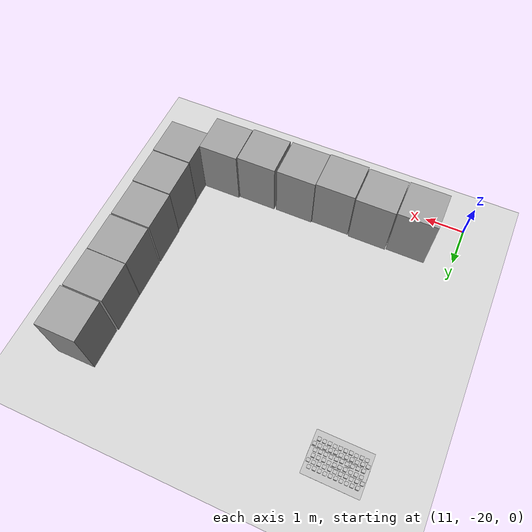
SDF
<sdf version="1.6">
 <world name="default">
  <model name="ground_plane">
   <static>1</static>
   <link name="link">
    <collision name="collision">
     <geometry><plane><normal>0 0 1</normal><size>100 100</size></plane></geometry>
     <surface><friction><ode><mu>100</mu><mu2>50</mu2></ode></friction></surface>
    </collision>
    <visual name="visual">
     <cast_shadows>0</cast_shadows>
     <geometry><plane><normal>0 0 1</normal><size>100 100</size></plane></geometry>
     <material>
      <script><uri>file://media/materials/scripts/gazebo.material</uri><name>Gazebo/Grey</name></script>
     </material>
    </visual>
   </link>
  </model>
  <model name="frc2016_roughterrain_clone_0_clone_clone_3_clone_1_clone_0_clone_clone_2_clone_clone">
   <static>1</static>
   <link name="link">
    <visual name="platform">
     <pose>0 0 0.08269 0 -0 0</pose>
     <geometry><box><size>1.27 0.5969 0.003175</size></box></geometry>
    </visual>
    <collision name="platform">
     <pose>0 0 0.08269 0 -0 0</pose>
     <geometry><box><size>1.27 0.5969 0.003175</size></box></geometry>
    </collision>
    <visual name="row1_block1_sm">
     <pose>0.51435 0.1143 0.09698 0 -0 0</pose>
     <geometry><box><size>0.0762 0.0762 0.0254</size></box></geometry>
    </visual>
    <collision name="row1_block1_sm">
     <pose>0.51435 0.1143 0.09698 0 -0 0</pose>
     <geometry><box><size>0.0762 0.0762 0.0254</size></box></geometry>
    </collision>
    <visual name="row1_block2_lg">
     <pose>0.40005 0.1143 0.12238 0 -0 0</pose>
     <geometry><box><size>0.0762 0.0762 0.0762</size></box></geometry>
    </visual>
    <collision name="row1_block2_lg">
     <pose>0.40005 0.1143 0.12238 0 -0 0</pose>
     <geometry><box><size>0.0762 0.0762 0.0762</size></box></geometry>
    </collision>
    <visual name="row1_block3_md">
     <pose>0.28575 0.1143 0.10968 0 -0 0</pose>
     <geometry><box><size>0.0762 0.0762 0.0508</size></box></geometry>
    </visual>
    <collision name="row1_block3_md">
     <pose>0.28575 0.1143 0.10968 0 -0 0</pose>
     <geometry><box><size>0.0762 0.0762 0.0508</size></box></geometry>
    </collision>
    <visual name="row1_block4_sm">
     <pose>0.17145 0.1143 0.09698 0 -0 0</pose>
     <geometry><box><size>0.0762 0.0762 0.0254</size></box></geometry>
    </visual>
    <collision name="row1_block4_sm">
     <pose>0.17145 0.1143 0.09698 0 -0 0</pose>
     <geometry><box><size>0.0762 0.0762 0.0254</size></box></geometry>
    </collision>
    <visual name="row1_block5_md">
     <pose>0.05715 0.1143 0.10968 0 -0 0</pose>
     <geometry><box><size>0.0762 0.0762 0.0508</size></box></geometry>
    </visual>
    <collision name="row1_block5_md">
     <pose>0.05715 0.1143 0.10968 0 -0 0</pose>
     <geometry><box><size>0.0762 0.0762 0.0508</size></box></geometry>
    </collision>
    <visual name="row1_block6_lg">
     <pose>-0.05715 0.1143 0.12238 0 -0 0</pose>
     <geometry><box><size>0.0762 0.0762 0.0762</size></box></geometry>
    </visual>
    <collision name="row1_block6_lg">
     <pose>-0.05715 0.1143 0.12238 0 -0 0</pose>
     <geometry><box><size>0.0762 0.0762 0.0762</size></box></geometry>
    </collision>
    <visual name="row1_block7_sm">
     <pose>-0.17145 0.1143 0.09698 0 -0 0</pose>
     <geometry><box><size>0.0762 0.0762 0.0254</size></box></geometry>
    </visual>
    <collision name="row1_block7_sm">
     <pose>-0.17145 0.1143 0.09698 0 -0 0</pose>
     <geometry><box><size>0.0762 0.0762 0.0254</size></box></geometry>
    </collision>
    <visual name="row1_block8_sm">
     <pose>-0.28575 0.1143 0.09698 0 -0 0</pose>
     <geometry><box><size>0.0762 0.0762 0.0254</size></box></geometry>
    </visual>
    <collision name="row1_block8_sm">
     <pose>-0.28575 0.1143 0.09698 0 -0 0</pose>
     <geometry><box><size>0.0762 0.0762 0.0254</size></box></geometry>
    </collision>
    <visual name="row1_block9_md">
     <pose>-0.40005 0.1143 0.10968 0 -0 0</pose>
     <geometry><box><size>0.0762 0.0762 0.0508</size></box></geometry>
    </visual>
    <collision name="row1_block9_md">
     <pose>-0.40005 0.1143 0.10968 0 -0 0</pose>
     <geometry><box><size>0.0762 0.0762 0.0508</size></box></geometry>
    </collision>
    <visual name="row1_block10_lg">
     <pose>-0.51435 0.1143 0.12238 0 -0 0</pose>
     <geometry><box><size>0.0762 0.0762 0.0762</size></box></geometry>
    </visual>
    <collision name="row1_block10_lg">
     <pose>-0.51435 0.1143 0.12238 0 -0 0</pose>
     <geometry><box><size>0.0762 0.0762 0.0762</size></box></geometry>
    </collision>
    <visual name="row2_block1_md">
     <pose>0.5715 0 0.10968 0 -0 0</pose>
     <geometry><box><size>0.0762 0.0762 0.0508</size></box></geometry>
    </visual>
    <collision name="row2_block1_md">
     <pose>0.5715 0 0.10968 0 -0 0</pose>
     <geometry><box><size>0.0762 0.0762 0.0508</size></box></geometry>
    </collision>
    <visual name="row2_block2_sm">
     <pose>0.4572 0 0.09698 0 -0 0</pose>
     <geometry><box><size>0.0762 0.0762 0.0254</size></box></geometry>
    </visual>
    <collision name="row2_block2_sm">
     <pose>0.4572 0 0.09698 0 -0 0</pose>
     <geometry><box><size>0.0762 0.0762 0.0254</size></box></geometry>
    </collision>
    <visual name="row2_block3_lg">
     <pose>0.3429 0 0.12238 0 -0 0</pose>
     <geometry><box><size>0.0762 0.0762 0.0762</size></box></geometry>
    </visual>
    <collision name="row2_block3_lg">
     <pose>0.3429 0 0.12238 0 -0 0</pose>
     <geometry><box><size>0.0762 0.0762 0.0762</size></box></geometry>
    </collision>
    <visual name="row2_block4_md">
     <pose>0.2286 0 0.10968 0 -0 0</pose>
     <geometry><box><size>0.0762 0.0762 0.0508</size></box></geometry>
    </visual>
    <collision name="row2_block4_md">
     <pose>0.2286 0 0.10968 0 -0 0</pose>
     <geometry><box><size>0.0762 0.0762 0.0508</size></box></geometry>
    </collision>
    <visual name="row2_block5_lg">
     <pose>0.1143 0 0.12238 0 -0 0</pose>
     <geometry><box><size>0.0762 0.0762 0.0762</size></box></geometry>
    </visual>
    <collision name="row2_block5_lg">
     <pose>0.1143 0 0.12238 0 -0 0</pose>
     <geometry><box><size>0.0762 0.0762 0.0762</size></box></geometry>
    </collision>
    <visual name="row2_block6_sm">
     <pose>0 0 0.09698 0 -0 0</pose>
     <geometry><box><size>0.0762 0.0762 0.0254</size></box></geometry>
    </visual>
    <collision name="row2_block6_sm">
     <pose>0 0 0.09698 0 -0 0</pose>
     <geometry><box><size>0.0762 0.0762 0.0254</size></box></geometry>
    </collision>
    <visual name="row2_block7_md">
     <pose>-0.1143 0 0.10968 0 -0 0</pose>
     <geometry><box><size>0.0762 0.0762 0.0508</size></box></geometry>
    </visual>
    <collision name="row2_block7_md">
     <pose>-0.1143 0 0.10968 0 -0 0</pose>
     <geometry><box><size>0.0762 0.0762 0.0508</size></box></geometry>
    </collision>
    <visual name="row2_block8_lg">
     <pose>-0.2286 0 0.12238 0 -0 0</pose>
     <geometry><box><size>0.0762 0.0762 0.0762</size></box></geometry>
    </visual>
    <collision name="row2_block8_lg">
     <pose>-0.2286 0 0.12238 0 -0 0</pose>
     <geometry><box><size>0.0762 0.0762 0.0762</size></box></geometry>
    </collision>
    <visual name="row2_block9_sm">
     <pose>-0.3429 0 0.09698 0 -0 0</pose>
     <geometry><box><size>0.0762 0.0762 0.0254</size></box></geometry>
    </visual>
    <collision name="row2_block9_sm">
     <pose>-0.3429 0 0.09698 0 -0 0</pose>
     <geometry><box><size>0.0762 0.0762 0.0254</size></box></geometry>
    </collision>
    <visual name="row2_block10_lg">
     <pose>-0.4572 0 0.12238 0 -0 0</pose>
     <geometry><box><size>0.0762 0.0762 0.0762</size></box></geometry>
    </visual>
    <collision name="row2_block10_lg">
     <pose>-0.4572 0 0.12238 0 -0 0</pose>
     <geometry><box><size>0.0762 0.0762 0.0762</size></box></geometry>
    </collision>
    <visual name="row2_block11_md">
     <pose>-0.5715 0 0.10968 0 -0 0</pose>
     <geometry><box><size>0.0762 0.0762 0.0508</size></box></geometry>
    </visual>
    <collision name="row2_block11_md">
     <pose>-0.5715 0 0.10968 0 -0 0</pose>
     <geometry><box><size>0.0762 0.0762 0.0508</size></box></geometry>
    </collision>
    <visual name="row3_block1_lg">
     <pose>0.51435 -0.1143 0.12238 0 -0 0</pose>
     <geometry><box><size>0.0762 0.0762 0.0762</size></box></geometry>
    </visual>
    <collision name="row3_block1_lg">
     <pose>0.51435 -0.1143 0.12238 0 -0 0</pose>
     <geometry><box><size>0.0762 0.0762 0.0762</size></box></geometry>
    </collision>
    <visual name="row3_block2_md">
     <pose>0.40005 -0.1143 0.10968 0 -0 0</pose>
     <geometry><box><size>0.0762 0.0762 0.0508</size></box></geometry>
    </visual>
    <collision name="row3_block2_md">
     <pose>0.40005 -0.1143 0.10968 0 -0 0</pose>
     <geometry><box><size>0.0762 0.0762 0.0508</size></box></geometry>
    </collision>
    <visual name="row3_block3_lg">
     <pose>0.28575 -0.1143 0.12238 0 -0 0</pose>
     <geometry><box><size>0.0762 0.0762 0.0762</size></box></geometry>
    </visual>
    <collision name="row3_block3_lg">
     <pose>0.28575 -0.1143 0.12238 0 -0 0</pose>
     <geometry><box><size>0.0762 0.0762 0.0762</size></box></geometry>
    </collision>
    <visual name="row3_block4_sm">
     <pose>0.17145 -0.1143 0.09698 0 -0 0</pose>
     <geometry><box><size>0.0762 0.0762 0.0254</size></box></geometry>
    </visual>
    <collision name="row3_block4_sm">
     <pose>0.17145 -0.1143 0.09698 0 -0 0</pose>
     <geometry><box><size>0.0762 0.0762 0.0254</size></box></geometry>
    </collision>
    <visual name="row3_block5_md">
     <pose>0.05715 -0.1143 0.10968 0 -0 0</pose>
     <geometry><box><size>0.0762 0.0762 0.0508</size></box></geometry>
    </visual>
    <collision name="row3_block5_md">
     <pose>0.05715 -0.1143 0.10968 0 -0 0</pose>
     <geometry><box><size>0.0762 0.0762 0.0508</size></box></geometry>
    </collision>
    <visual name="row3_block6_md">
     <pose>-0.05715 -0.1143 0.10968 0 -0 0</pose>
     <geometry><box><size>0.0762 0.0762 0.0508</size></box></geometry>
    </visual>
    <collision name="row3_block6_md">
     <pose>-0.05715 -0.1143 0.10968 0 -0 0</pose>
     <geometry><box><size>0.0762 0.0762 0.0508</size></box></geometry>
    </collision>
    <visual name="row3_block7_lg">
     <pose>-0.17145 -0.1143 0.12238 0 -0 0</pose>
     <geometry><box><size>0.0762 0.0762 0.0762</size></box></geometry>
    </visual>
    <collision name="row3_block7_lg">
     <pose>-0.17145 -0.1143 0.12238 0 -0 0</pose>
     <geometry><box><size>0.0762 0.0762 0.0762</size></box></geometry>
    </collision>
    <visual name="row3_block8_sm">
     <pose>-0.28575 -0.1143 0.09698 0 -0 0</pose>
     <geometry><box><size>0.0762 0.0762 0.0254</size></box></geometry>
    </visual>
    <collision name="row3_block8_sm">
     <pose>-0.28575 -0.1143 0.09698 0 -0 0</pose>
     <geometry><box><size>0.0762 0.0762 0.0254</size></box></geometry>
    </collision>
    <visual name="row3_block9_md">
     <pose>-0.40005 -0.1143 0.10968 0 -0 0</pose>
     <geometry><box><size>0.0762 0.0762 0.0508</size></box></geometry>
    </visual>
    <collision name="row3_block9_md">
     <pose>-0.40005 -0.1143 0.10968 0 -0 0</pose>
     <geometry><box><size>0.0762 0.0762 0.0508</size></box></geometry>
    </collision>
    <visual name="row3_block10_sm">
     <pose>-0.51435 -0.1143 0.09698 0 -0 0</pose>
     <geometry><box><size>0.0762 0.0762 0.0254</size></box></geometry>
    </visual>
    <collision name="row3_block10_sm">
     <pose>-0.51435 -0.1143 0.09698 0 -0 0</pose>
     <geometry><box><size>0.0762 0.0762 0.0254</size></box></geometry>
    </collision>
   </link>
   <pose>11.9151 -12.8537 0.826533 0 -0 0</pose>
  </model>
  <model name="frc2016_roughterrain_clone_0_clone_clone_3_clone_1_clone_0_clone_clone_2_clone_clone_0">
   <static>1</static>
   <link name="link">
    <visual name="platform">
     <pose>0 0 0.08269 0 -0 0</pose>
     <geometry><box><size>1.27 0.5969 0.003175</size></box></geometry>
    </visual>
    <collision name="platform">
     <pose>0 0 0.08269 0 -0 0</pose>
     <geometry><box><size>1.27 0.5969 0.003175</size></box></geometry>
    </collision>
    <visual name="row1_block1_sm">
     <pose>0.51435 0.1143 0.09698 0 -0 0</pose>
     <geometry><box><size>0.0762 0.0762 0.0254</size></box></geometry>
    </visual>
    <collision name="row1_block1_sm">
     <pose>0.51435 0.1143 0.09698 0 -0 0</pose>
     <geometry><box><size>0.0762 0.0762 0.0254</size></box></geometry>
    </collision>
    <visual name="row1_block2_lg">
     <pose>0.40005 0.1143 0.12238 0 -0 0</pose>
     <geometry><box><size>0.0762 0.0762 0.0762</size></box></geometry>
    </visual>
    <collision name="row1_block2_lg">
     <pose>0.40005 0.1143 0.12238 0 -0 0</pose>
     <geometry><box><size>0.0762 0.0762 0.0762</size></box></geometry>
    </collision>
    <visual name="row1_block3_md">
     <pose>0.28575 0.1143 0.10968 0 -0 0</pose>
     <geometry><box><size>0.0762 0.0762 0.0508</size></box></geometry>
    </visual>
    <collision name="row1_block3_md">
     <pose>0.28575 0.1143 0.10968 0 -0 0</pose>
     <geometry><box><size>0.0762 0.0762 0.0508</size></box></geometry>
    </collision>
    <visual name="row1_block4_sm">
     <pose>0.17145 0.1143 0.09698 0 -0 0</pose>
     <geometry><box><size>0.0762 0.0762 0.0254</size></box></geometry>
    </visual>
    <collision name="row1_block4_sm">
     <pose>0.17145 0.1143 0.09698 0 -0 0</pose>
     <geometry><box><size>0.0762 0.0762 0.0254</size></box></geometry>
    </collision>
    <visual name="row1_block5_md">
     <pose>0.05715 0.1143 0.10968 0 -0 0</pose>
     <geometry><box><size>0.0762 0.0762 0.0508</size></box></geometry>
    </visual>
    <collision name="row1_block5_md">
     <pose>0.05715 0.1143 0.10968 0 -0 0</pose>
     <geometry><box><size>0.0762 0.0762 0.0508</size></box></geometry>
    </collision>
    <visual name="row1_block6_lg">
     <pose>-0.05715 0.1143 0.12238 0 -0 0</pose>
     <geometry><box><size>0.0762 0.0762 0.0762</size></box></geometry>
    </visual>
    <collision name="row1_block6_lg">
     <pose>-0.05715 0.1143 0.12238 0 -0 0</pose>
     <geometry><box><size>0.0762 0.0762 0.0762</size></box></geometry>
    </collision>
    <visual name="row1_block7_sm">
     <pose>-0.17145 0.1143 0.09698 0 -0 0</pose>
     <geometry><box><size>0.0762 0.0762 0.0254</size></box></geometry>
    </visual>
    <collision name="row1_block7_sm">
     <pose>-0.17145 0.1143 0.09698 0 -0 0</pose>
     <geometry><box><size>0.0762 0.0762 0.0254</size></box></geometry>
    </collision>
    <visual name="row1_block8_sm">
     <pose>-0.28575 0.1143 0.09698 0 -0 0</pose>
     <geometry><box><size>0.0762 0.0762 0.0254</size></box></geometry>
    </visual>
    <collision name="row1_block8_sm">
     <pose>-0.28575 0.1143 0.09698 0 -0 0</pose>
     <geometry><box><size>0.0762 0.0762 0.0254</size></box></geometry>
    </collision>
    <visual name="row1_block9_md">
     <pose>-0.40005 0.1143 0.10968 0 -0 0</pose>
     <geometry><box><size>0.0762 0.0762 0.0508</size></box></geometry>
    </visual>
    <collision name="row1_block9_md">
     <pose>-0.40005 0.1143 0.10968 0 -0 0</pose>
     <geometry><box><size>0.0762 0.0762 0.0508</size></box></geometry>
    </collision>
    <visual name="row1_block10_lg">
     <pose>-0.51435 0.1143 0.12238 0 -0 0</pose>
     <geometry><box><size>0.0762 0.0762 0.0762</size></box></geometry>
    </visual>
    <collision name="row1_block10_lg">
     <pose>-0.51435 0.1143 0.12238 0 -0 0</pose>
     <geometry><box><size>0.0762 0.0762 0.0762</size></box></geometry>
    </collision>
    <visual name="row2_block1_md">
     <pose>0.5715 0 0.10968 0 -0 0</pose>
     <geometry><box><size>0.0762 0.0762 0.0508</size></box></geometry>
    </visual>
    <collision name="row2_block1_md">
     <pose>0.5715 0 0.10968 0 -0 0</pose>
     <geometry><box><size>0.0762 0.0762 0.0508</size></box></geometry>
    </collision>
    <visual name="row2_block2_sm">
     <pose>0.4572 0 0.09698 0 -0 0</pose>
     <geometry><box><size>0.0762 0.0762 0.0254</size></box></geometry>
    </visual>
    <collision name="row2_block2_sm">
     <pose>0.4572 0 0.09698 0 -0 0</pose>
     <geometry><box><size>0.0762 0.0762 0.0254</size></box></geometry>
    </collision>
    <visual name="row2_block3_lg">
     <pose>0.3429 0 0.12238 0 -0 0</pose>
     <geometry><box><size>0.0762 0.0762 0.0762</size></box></geometry>
    </visual>
    <collision name="row2_block3_lg">
     <pose>0.3429 0 0.12238 0 -0 0</pose>
     <geometry><box><size>0.0762 0.0762 0.0762</size></box></geometry>
    </collision>
    <visual name="row2_block4_md">
     <pose>0.2286 0 0.10968 0 -0 0</pose>
     <geometry><box><size>0.0762 0.0762 0.0508</size></box></geometry>
    </visual>
    <collision name="row2_block4_md">
     <pose>0.2286 0 0.10968 0 -0 0</pose>
     <geometry><box><size>0.0762 0.0762 0.0508</size></box></geometry>
    </collision>
    <visual name="row2_block5_lg">
     <pose>0.1143 0 0.12238 0 -0 0</pose>
     <geometry><box><size>0.0762 0.0762 0.0762</size></box></geometry>
    </visual>
    <collision name="row2_block5_lg">
     <pose>0.1143 0 0.12238 0 -0 0</pose>
     <geometry><box><size>0.0762 0.0762 0.0762</size></box></geometry>
    </collision>
    <visual name="row2_block6_sm">
     <pose>0 0 0.09698 0 -0 0</pose>
     <geometry><box><size>0.0762 0.0762 0.0254</size></box></geometry>
    </visual>
    <collision name="row2_block6_sm">
     <pose>0 0 0.09698 0 -0 0</pose>
     <geometry><box><size>0.0762 0.0762 0.0254</size></box></geometry>
    </collision>
    <visual name="row2_block7_md">
     <pose>-0.1143 0 0.10968 0 -0 0</pose>
     <geometry><box><size>0.0762 0.0762 0.0508</size></box></geometry>
    </visual>
    <collision name="row2_block7_md">
     <pose>-0.1143 0 0.10968 0 -0 0</pose>
     <geometry><box><size>0.0762 0.0762 0.0508</size></box></geometry>
    </collision>
    <visual name="row2_block8_lg">
     <pose>-0.2286 0 0.12238 0 -0 0</pose>
     <geometry><box><size>0.0762 0.0762 0.0762</size></box></geometry>
    </visual>
    <collision name="row2_block8_lg">
     <pose>-0.2286 0 0.12238 0 -0 0</pose>
     <geometry><box><size>0.0762 0.0762 0.0762</size></box></geometry>
    </collision>
    <visual name="row2_block9_sm">
     <pose>-0.3429 0 0.09698 0 -0 0</pose>
     <geometry><box><size>0.0762 0.0762 0.0254</size></box></geometry>
    </visual>
    <collision name="row2_block9_sm">
     <pose>-0.3429 0 0.09698 0 -0 0</pose>
     <geometry><box><size>0.0762 0.0762 0.0254</size></box></geometry>
    </collision>
    <visual name="row2_block10_lg">
     <pose>-0.4572 0 0.12238 0 -0 0</pose>
     <geometry><box><size>0.0762 0.0762 0.0762</size></box></geometry>
    </visual>
    <collision name="row2_block10_lg">
     <pose>-0.4572 0 0.12238 0 -0 0</pose>
     <geometry><box><size>0.0762 0.0762 0.0762</size></box></geometry>
    </collision>
    <visual name="row2_block11_md">
     <pose>-0.5715 0 0.10968 0 -0 0</pose>
     <geometry><box><size>0.0762 0.0762 0.0508</size></box></geometry>
    </visual>
    <collision name="row2_block11_md">
     <pose>-0.5715 0 0.10968 0 -0 0</pose>
     <geometry><box><size>0.0762 0.0762 0.0508</size></box></geometry>
    </collision>
    <visual name="row3_block1_lg">
     <pose>0.51435 -0.1143 0.12238 0 -0 0</pose>
     <geometry><box><size>0.0762 0.0762 0.0762</size></box></geometry>
    </visual>
    <collision name="row3_block1_lg">
     <pose>0.51435 -0.1143 0.12238 0 -0 0</pose>
     <geometry><box><size>0.0762 0.0762 0.0762</size></box></geometry>
    </collision>
    <visual name="row3_block2_md">
     <pose>0.40005 -0.1143 0.10968 0 -0 0</pose>
     <geometry><box><size>0.0762 0.0762 0.0508</size></box></geometry>
    </visual>
    <collision name="row3_block2_md">
     <pose>0.40005 -0.1143 0.10968 0 -0 0</pose>
     <geometry><box><size>0.0762 0.0762 0.0508</size></box></geometry>
    </collision>
    <visual name="row3_block3_lg">
     <pose>0.28575 -0.1143 0.12238 0 -0 0</pose>
     <geometry><box><size>0.0762 0.0762 0.0762</size></box></geometry>
    </visual>
    <collision name="row3_block3_lg">
     <pose>0.28575 -0.1143 0.12238 0 -0 0</pose>
     <geometry><box><size>0.0762 0.0762 0.0762</size></box></geometry>
    </collision>
    <visual name="row3_block4_sm">
     <pose>0.17145 -0.1143 0.09698 0 -0 0</pose>
     <geometry><box><size>0.0762 0.0762 0.0254</size></box></geometry>
    </visual>
    <collision name="row3_block4_sm">
     <pose>0.17145 -0.1143 0.09698 0 -0 0</pose>
     <geometry><box><size>0.0762 0.0762 0.0254</size></box></geometry>
    </collision>
    <visual name="row3_block5_md">
     <pose>0.05715 -0.1143 0.10968 0 -0 0</pose>
     <geometry><box><size>0.0762 0.0762 0.0508</size></box></geometry>
    </visual>
    <collision name="row3_block5_md">
     <pose>0.05715 -0.1143 0.10968 0 -0 0</pose>
     <geometry><box><size>0.0762 0.0762 0.0508</size></box></geometry>
    </collision>
    <visual name="row3_block6_md">
     <pose>-0.05715 -0.1143 0.10968 0 -0 0</pose>
     <geometry><box><size>0.0762 0.0762 0.0508</size></box></geometry>
    </visual>
    <collision name="row3_block6_md">
     <pose>-0.05715 -0.1143 0.10968 0 -0 0</pose>
     <geometry><box><size>0.0762 0.0762 0.0508</size></box></geometry>
    </collision>
    <visual name="row3_block7_lg">
     <pose>-0.17145 -0.1143 0.12238 0 -0 0</pose>
     <geometry><box><size>0.0762 0.0762 0.0762</size></box></geometry>
    </visual>
    <collision name="row3_block7_lg">
     <pose>-0.17145 -0.1143 0.12238 0 -0 0</pose>
     <geometry><box><size>0.0762 0.0762 0.0762</size></box></geometry>
    </collision>
    <visual name="row3_block8_sm">
     <pose>-0.28575 -0.1143 0.09698 0 -0 0</pose>
     <geometry><box><size>0.0762 0.0762 0.0254</size></box></geometry>
    </visual>
    <collision name="row3_block8_sm">
     <pose>-0.28575 -0.1143 0.09698 0 -0 0</pose>
     <geometry><box><size>0.0762 0.0762 0.0254</size></box></geometry>
    </collision>
    <visual name="row3_block9_md">
     <pose>-0.40005 -0.1143 0.10968 0 -0 0</pose>
     <geometry><box><size>0.0762 0.0762 0.0508</size></box></geometry>
    </visual>
    <collision name="row3_block9_md">
     <pose>-0.40005 -0.1143 0.10968 0 -0 0</pose>
     <geometry><box><size>0.0762 0.0762 0.0508</size></box></geometry>
    </collision>
    <visual name="row3_block10_sm">
     <pose>-0.51435 -0.1143 0.09698 0 -0 0</pose>
     <geometry><box><size>0.0762 0.0762 0.0254</size></box></geometry>
    </visual>
    <collision name="row3_block10_sm">
     <pose>-0.51435 -0.1143 0.09698 0 -0 0</pose>
     <geometry><box><size>0.0762 0.0762 0.0254</size></box></geometry>
    </collision>
   </link>
   <pose>11.9187 -13.205 0.826533 0 -0 0</pose>
  </model>
  <model name="unit_box_clone_10_clone_13_clone_0_clone_2">
   <pose>18.3074 -13.4562 0.799368 -5e-06 1e-06 2e-06</pose>
   <link name="link">
    <inertial>
     <mass>1</mass>
     <inertia>
      <ixx>0.166667</ixx>
      <ixy>0</ixy>
      <ixz>0</ixz>
      <iyy>0.166667</iyy>
      <iyz>0</iyz>
      <izz>0.166667</izz>
     </inertia>
    </inertial>
    <collision name="collision"><geometry><box><size>1 1 1.59874</size></box></geometry></collision>
    <visual name="visual">
     <geometry><box><size>1 1 1.59874</size></box></geometry>
     <material>
      <script><name>Gazebo/Grey</name><uri>file://media/materials/scripts/gazebo.material</uri></script>
     </material>
    </visual>
   </link>
  </model>
  <model name="unit_box_clone_10_clone_13_clone_0_clone_3">
   <pose>18.2775 -14.4893 0.799368 -5e-06 1e-06 2e-06</pose>
   <link name="link">
    <inertial>
     <mass>1</mass>
     <inertia>
      <ixx>0.166667</ixx>
      <ixy>0</ixy>
      <ixz>0</ixz>
      <iyy>0.166667</iyy>
      <iyz>0</iyz>
      <izz>0.166667</izz>
     </inertia>
    </inertial>
    <collision name="collision"><geometry><box><size>1 1 1.59874</size></box></geometry></collision>
    <visual name="visual">
     <geometry><box><size>1 1 1.59874</size></box></geometry>
     <material>
      <script><name>Gazebo/Grey</name><uri>file://media/materials/scripts/gazebo.material</uri></script>
     </material>
    </visual>
   </link>
  </model>
  <model name="unit_box_clone_10_clone_13_clone_0_clone_4">
   <pose>18.2755 -15.4988 0.799368 -5e-06 1e-06 2e-06</pose>
   <link name="link">
    <inertial>
     <mass>1</mass>
     <inertia>
      <ixx>0.166667</ixx>
      <ixy>0</ixy>
      <ixz>0</ixz>
      <iyy>0.166667</iyy>
      <iyz>0</iyz>
      <izz>0.166667</izz>
     </inertia>
    </inertial>
    <collision name="collision"><geometry><box><size>1 1 1.59874</size></box></geometry></collision>
    <visual name="visual">
     <geometry><box><size>1 1 1.59874</size></box></geometry>
     <material>
      <script><name>Gazebo/Grey</name><uri>file://media/materials/scripts/gazebo.material</uri></script>
     </material>
    </visual>
   </link>
  </model>
  <model name="unit_box_clone_10_clone_13_clone_0_clone_5">
   <pose>18.2707 -16.5312 0.799368 -5e-06 1e-06 2e-06</pose>
   <link name="link">
    <inertial>
     <mass>1</mass>
     <inertia>
      <ixx>0.166667</ixx>
      <ixy>0</ixy>
      <ixz>0</ixz>
      <iyy>0.166667</iyy>
      <iyz>0</iyz>
      <izz>0.166667</izz>
     </inertia>
    </inertial>
    <collision name="collision"><geometry><box><size>1 1 1.59874</size></box></geometry></collision>
    <visual name="visual">
     <geometry><box><size>1 1 1.59874</size></box></geometry>
     <material>
      <script><name>Gazebo/Grey</name><uri>file://media/materials/scripts/gazebo.material</uri></script>
     </material>
    </visual>
   </link>
  </model>
  <model name="unit_box_clone_10_clone_13_clone_0_clone_6">
   <pose>18.2869 -17.5508 0.799368 -5e-06 1e-06 2e-06</pose>
   <link name="link">
    <inertial>
     <mass>1</mass>
     <inertia>
      <ixx>0.166667</ixx>
      <ixy>0</ixy>
      <ixz>0</ixz>
      <iyy>0.166667</iyy>
      <iyz>0</iyz>
      <izz>0.166667</izz>
     </inertia>
    </inertial>
    <collision name="collision"><geometry><box><size>1 1 1.59874</size></box></geometry></collision>
    <visual name="visual">
     <geometry><box><size>1 1 1.59874</size></box></geometry>
     <material>
      <script><name>Gazebo/Grey</name><uri>file://media/materials/scripts/gazebo.material</uri></script>
     </material>
    </visual>
   </link>
  </model>
  <model name="unit_box_clone_10_clone_13_clone_0_clone_7">
   <pose>18.3 -18.5709 0.79937 0 -0 0.003148</pose>
   <link name="link">
    <inertial>
     <mass>1</mass>
     <inertia>
      <ixx>0.166667</ixx>
      <ixy>0</ixy>
      <ixz>0</ixz>
      <iyy>0.166667</iyy>
      <iyz>0</iyz>
      <izz>0.166667</izz>
     </inertia>
    </inertial>
    <collision name="collision"><geometry><box><size>1 1 1.59874</size></box></geometry></collision>
    <visual name="visual">
     <geometry><box><size>1 1 1.59874</size></box></geometry>
     <material>
      <script><name>Gazebo/Grey</name><uri>file://media/materials/scripts/gazebo.material</uri></script>
     </material>
    </visual>
   </link>
  </model>
  <model name="unit_box_clone_10_clone_13_clone_0_clone_8">
   <pose>17.3017 -19.1255 0.799368 -4e-06 -0 0.003103</pose>
   <link name="link">
    <inertial>
     <mass>1</mass>
     <inertia>
      <ixx>0.166667</ixx>
      <ixy>0</ixy>
      <ixz>0</ixz>
      <iyy>0.166667</iyy>
      <iyz>0</iyz>
      <izz>0.166667</izz>
     </inertia>
    </inertial>
    <collision name="collision"><geometry><box><size>1 1 1.59874</size></box></geometry></collision>
    <visual name="visual">
     <geometry><box><size>1 1 1.59874</size></box></geometry>
     <material>
      <script><name>Gazebo/Grey</name><uri>file://media/materials/scripts/gazebo.material</uri></script>
     </material>
    </visual>
   </link>
  </model>
  <model name="unit_box_clone_10_clone_13_clone_0_clone_9">
   <pose>16.288 -19.1715 0.799368 -5e-06 1e-06 2e-06</pose>
   <link name="link">
    <inertial>
     <mass>1</mass>
     <inertia>
      <ixx>0.166667</ixx>
      <ixy>0</ixy>
      <ixz>0</ixz>
      <iyy>0.166667</iyy>
      <iyz>0</iyz>
      <izz>0.166667</izz>
     </inertia>
    </inertial>
    <collision name="collision"><geometry><box><size>1 1 1.59874</size></box></geometry></collision>
    <visual name="visual">
     <geometry><box><size>1 1 1.59874</size></box></geometry>
     <material>
      <script><name>Gazebo/Grey</name><uri>file://media/materials/scripts/gazebo.material</uri></script>
     </material>
    </visual>
   </link>
  </model>
  <model name="unit_box_clone_10_clone_13_clone_0_clone_10">
   <pose>15.2308 -19.1848 0.799368 -5e-06 1e-06 2e-06</pose>
   <link name="link">
    <inertial>
     <mass>1</mass>
     <inertia>
      <ixx>0.166667</ixx>
      <ixy>0</ixy>
      <ixz>0</ixz>
      <iyy>0.166667</iyy>
      <iyz>0</iyz>
      <izz>0.166667</izz>
     </inertia>
    </inertial>
    <collision name="collision"><geometry><box><size>1 1 1.59874</size></box></geometry></collision>
    <visual name="visual">
     <geometry><box><size>1 1 1.59874</size></box></geometry>
     <material>
      <script><name>Gazebo/Grey</name><uri>file://media/materials/scripts/gazebo.material</uri></script>
     </material>
    </visual>
   </link>
  </model>
  <model name="unit_box_clone_10_clone_13_clone_0_clone_11">
   <pose>14.2255 -19.2131 0.799368 -5e-06 1e-06 2e-06</pose>
   <link name="link">
    <inertial>
     <mass>1</mass>
     <inertia>
      <ixx>0.166667</ixx>
      <ixy>0</ixy>
      <ixz>0</ixz>
      <iyy>0.166667</iyy>
      <iyz>0</iyz>
      <izz>0.166667</izz>
     </inertia>
    </inertial>
    <collision name="collision"><geometry><box><size>1 1 1.59874</size></box></geometry></collision>
    <visual name="visual">
     <geometry><box><size>1 1 1.59874</size></box></geometry>
     <material>
      <script><name>Gazebo/Grey</name><uri>file://media/materials/scripts/gazebo.material</uri></script>
     </material>
    </visual>
   </link>
  </model>
  <model name="unit_box_clone_10_clone_13_clone_0_clone_12">
   <pose>13.1975 -19.1799 0.799368 -5e-06 1e-06 2e-06</pose>
   <link name="link">
    <inertial>
     <mass>1</mass>
     <inertia>
      <ixx>0.166667</ixx>
      <ixy>0</ixy>
      <ixz>0</ixz>
      <iyy>0.166667</iyy>
      <iyz>0</iyz>
      <izz>0.166667</izz>
     </inertia>
    </inertial>
    <collision name="collision"><geometry><box><size>1 1 1.59874</size></box></geometry></collision>
    <visual name="visual">
     <geometry><box><size>1 1 1.59874</size></box></geometry>
     <material>
      <script><name>Gazebo/Grey</name><uri>file://media/materials/scripts/gazebo.material</uri></script>
     </material>
    </visual>
   </link>
  </model>
  <model name="unit_box_clone_10_clone_13_clone_0_clone_13">
   <pose>12.1744 -19.2027 0.799368 -5e-06 1e-06 2e-06</pose>
   <link name="link">
    <inertial>
     <mass>1</mass>
     <inertia>
      <ixx>0.166667</ixx>
      <ixy>0</ixy>
      <ixz>0</ixz>
      <iyy>0.166667</iyy>
      <iyz>0</iyz>
      <izz>0.166667</izz>
     </inertia>
    </inertial>
    <collision name="collision"><geometry><box><size>1 1 1.59874</size></box></geometry></collision>
    <visual name="visual">
     <geometry><box><size>1 1 1.59874</size></box></geometry>
     <material>
      <script><name>Gazebo/Grey</name><uri>file://media/materials/scripts/gazebo.material</uri></script>
     </material>
    </visual>
   </link>
  </model>
 </world>
</sdf>
